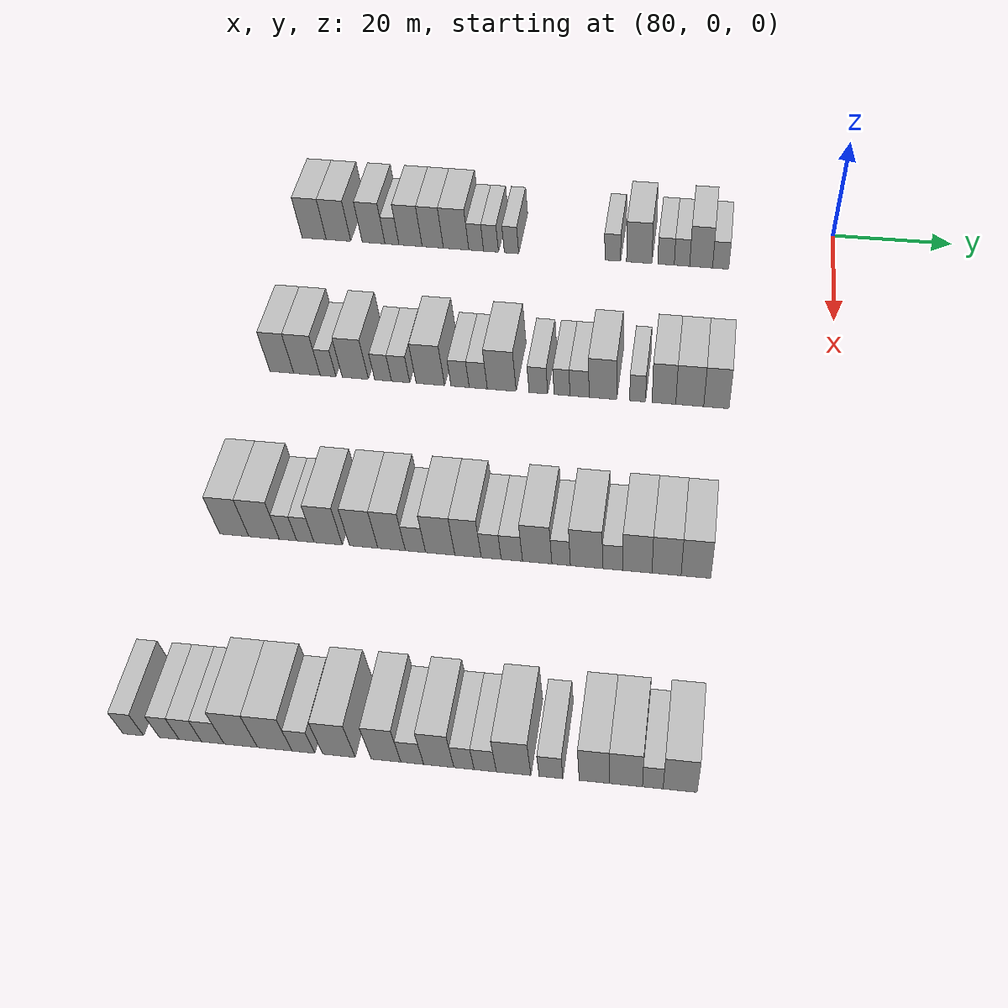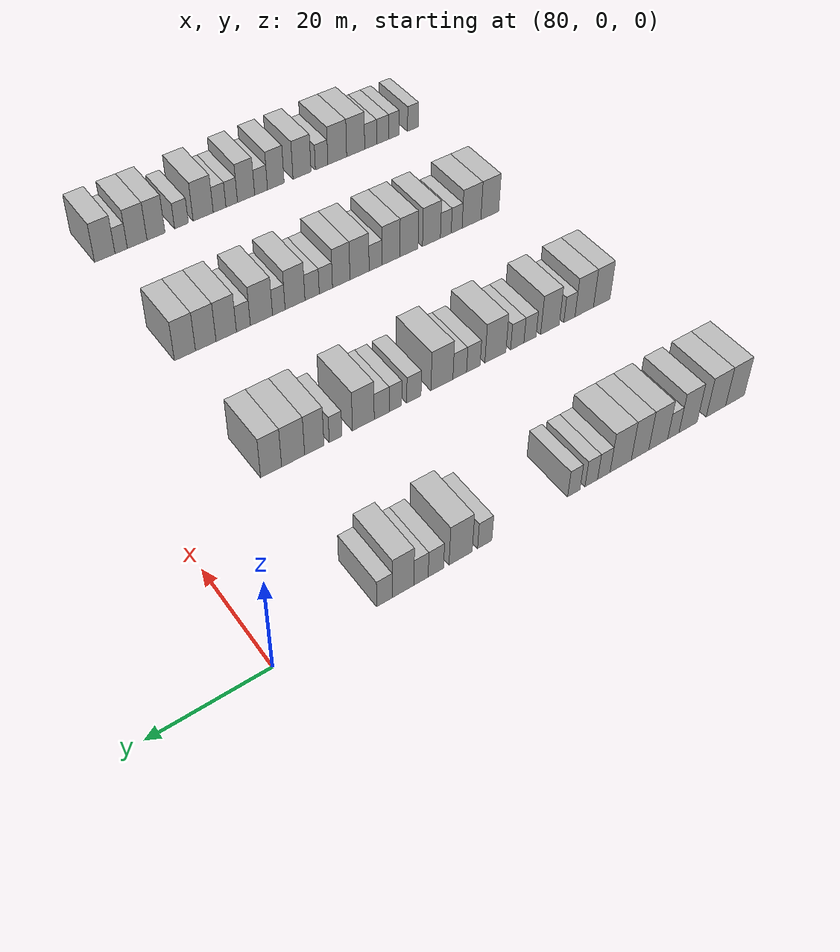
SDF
<sdf version="1.6">
 <world name="default">
  <model name="building_538">
   <static>1</static>
   <pose>85.0000 -88.3654 0 0.000000 0.000000 0.000000</pose>
   <link name="link">
    <pose>0 0 4.50 0 0 0</pose>
    <collision name="collision"><geometry><box><size>10.0000 4.2038 9.0000</size></box></geometry></collision>
    <visual name="visual">
     <cast_shadows>0</cast_shadows>
     <geometry><box><size>10.0000 4.2038 9.0000</size></box></geometry>
     <material>
      <script>
       <uri>model://HANNAS_wall/materials/scripts</uri>
       <uri>model://HANNAS_wall/materials/textures</uri>
       <name>vrc/HANNAS_wall</name>
      </script>
     </material>
    </visual>
   </link>
  </model>
  <model name="building_539">
   <static>1</static>
   <pose>85.0000 -84.1213 0 0.000000 0.000000 0.000000</pose>
   <link name="link">
    <pose>0 0 4.50 0 0 0</pose>
    <collision name="collision"><geometry><box><size>10.0000 4.2843 9.0000</size></box></geometry></collision>
    <visual name="visual">
     <cast_shadows>0</cast_shadows>
     <geometry><box><size>10.0000 4.2843 9.0000</size></box></geometry>
     <material>
      <script>
       <uri>model://HANNAS_wall/materials/scripts</uri>
       <uri>model://HANNAS_wall/materials/textures</uri>
       <name>vrc/HANNAS_wall</name>
      </script>
     </material>
    </visual>
   </link>
  </model>
  <model name="building_540">
   <static>1</static>
   <pose>85.0000 -78.0076 0 0.000000 0.000000 0.000000</pose>
   <link name="link">
    <pose>0 0 4.50 0 0 0</pose>
    <collision name="collision"><geometry><box><size>10.0000 3.9432 9.0000</size></box></geometry></collision>
    <visual name="visual">
     <cast_shadows>0</cast_shadows>
     <geometry><box><size>10.0000 3.9432 9.0000</size></box></geometry>
     <material>
      <script>
       <uri>model://HANNAS_wall/materials/scripts</uri>
       <uri>model://HANNAS_wall/materials/textures</uri>
       <name>vrc/HANNAS_wall</name>
      </script>
     </material>
    </visual>
   </link>
  </model>
  <model name="building_541">
   <static>1</static>
   <pose>85.0000 -74.8191 0 0.000000 0.000000 0.000000</pose>
   <link name="link">
    <pose>0 0 3.00 0 0 0</pose>
    <collision name="collision"><geometry><box><size>10.0000 2.4337 6.0000</size></box></geometry></collision>
    <visual name="visual">
     <cast_shadows>0</cast_shadows>
     <geometry><box><size>10.0000 2.4337 6.0000</size></box></geometry>
     <material>
      <script>
       <uri>model://HANNAS_wall/materials/scripts</uri>
       <uri>model://HANNAS_wall/materials/textures</uri>
       <name>vrc/HANNAS_wall</name>
      </script>
     </material>
    </visual>
   </link>
  </model>
  <model name="building_542">
   <static>1</static>
   <pose>85.0000 -71.5946 0 0.000000 0.000000 0.000000</pose>
   <link name="link">
    <pose>0 0 4.50 0 0 0</pose>
    <collision name="collision"><geometry><box><size>10.0000 4.0153 9.0000</size></box></geometry></collision>
    <visual name="visual">
     <cast_shadows>0</cast_shadows>
     <geometry><box><size>10.0000 4.0153 9.0000</size></box></geometry>
     <material>
      <script>
       <uri>model://HANNAS_wall/materials/scripts</uri>
       <uri>model://HANNAS_wall/materials/textures</uri>
       <name>vrc/HANNAS_wall</name>
      </script>
     </material>
    </visual>
   </link>
  </model>
  <model name="building_543">
   <static>1</static>
   <pose>85.0000 -67.7592 0 0.000000 0.000000 0.000000</pose>
   <link name="link">
    <pose>0 0 4.50 0 0 0</pose>
    <collision name="collision"><geometry><box><size>10.0000 3.6556 9.0000</size></box></geometry></collision>
    <visual name="visual">
     <cast_shadows>0</cast_shadows>
     <geometry><box><size>10.0000 3.6556 9.0000</size></box></geometry>
     <material>
      <script>
       <uri>model://HANNAS_wall/materials/scripts</uri>
       <uri>model://HANNAS_wall/materials/textures</uri>
       <name>vrc/HANNAS_wall</name>
      </script>
     </material>
    </visual>
   </link>
  </model>
  <model name="building_544">
   <static>1</static>
   <pose>85.0000 -63.7354 0 0.000000 0.000000 0.000000</pose>
   <link name="link">
    <pose>0 0 4.50 0 0 0</pose>
    <collision name="collision"><geometry><box><size>10.0000 4.3919 9.0000</size></box></geometry></collision>
    <visual name="visual">
     <cast_shadows>0</cast_shadows>
     <geometry><box><size>10.0000 4.3919 9.0000</size></box></geometry>
     <material>
      <script>
       <uri>model://HANNAS_wall/materials/scripts</uri>
       <uri>model://HANNAS_wall/materials/textures</uri>
       <name>vrc/HANNAS_wall</name>
      </script>
     </material>
    </visual>
   </link>
  </model>
  <model name="building_545">
   <static>1</static>
   <pose>85.0000 -60.2716 0 0.000000 0.000000 0.000000</pose>
   <link name="link">
    <pose>0 0 3.00 0 0 0</pose>
    <collision name="collision"><geometry><box><size>10.0000 2.5357 6.0000</size></box></geometry></collision>
    <visual name="visual">
     <cast_shadows>0</cast_shadows>
     <geometry><box><size>10.0000 2.5357 6.0000</size></box></geometry>
     <material>
      <script>
       <uri>model://HANNAS_wall/materials/scripts</uri>
       <uri>model://HANNAS_wall/materials/textures</uri>
       <name>vrc/HANNAS_wall</name>
      </script>
     </material>
    </visual>
   </link>
  </model>
  <model name="building_546">
   <static>1</static>
   <pose>85.0000 -57.7233 0 0.000000 0.000000 0.000000</pose>
   <link name="link">
    <pose>0 0 3.00 0 0 0</pose>
    <collision name="collision"><geometry><box><size>10.0000 2.5609 6.0000</size></box></geometry></collision>
    <visual name="visual">
     <cast_shadows>0</cast_shadows>
     <geometry><box><size>10.0000 2.5609 6.0000</size></box></geometry>
     <material>
      <script>
       <uri>model://HANNAS_wall/materials/scripts</uri>
       <uri>model://HANNAS_wall/materials/textures</uri>
       <name>vrc/HANNAS_wall</name>
      </script>
     </material>
    </visual>
   </link>
  </model>
  <model name="building_547">
   <static>1</static>
   <pose>85.0000 -54.2110 0 0.000000 0.000000 0.000000</pose>
   <link name="link">
    <pose>0 0 3.00 0 0 0</pose>
    <collision name="collision"><geometry><box><size>10.0000 2.4637 6.0000</size></box></geometry></collision>
    <visual name="visual">
     <cast_shadows>0</cast_shadows>
     <geometry><box><size>10.0000 2.4637 6.0000</size></box></geometry>
     <material>
      <script>
       <uri>model://HANNAS_wall/materials/scripts</uri>
       <uri>model://HANNAS_wall/materials/textures</uri>
       <name>vrc/HANNAS_wall</name>
      </script>
     </material>
    </visual>
   </link>
  </model>
  <model name="building_548">
   <static>1</static>
   <pose>85.0000 -36.9810 0 0.000000 0.000000 0.000000</pose>
   <link name="link">
    <pose>0 0 3.00 0 0 0</pose>
    <collision name="collision"><geometry><box><size>10.0000 2.6655 6.0000</size></box></geometry></collision>
    <visual name="visual">
     <cast_shadows>0</cast_shadows>
     <geometry><box><size>10.0000 2.6655 6.0000</size></box></geometry>
     <material>
      <script>
       <uri>model://HANNAS_wall/materials/scripts</uri>
       <uri>model://HANNAS_wall/materials/textures</uri>
       <name>vrc/HANNAS_wall</name>
      </script>
     </material>
    </visual>
   </link>
  </model>
  <model name="building_549">
   <static>1</static>
   <pose>85.0000 -32.5104 0 0.000000 0.000000 0.000000</pose>
   <link name="link">
    <pose>0 0 4.50 0 0 0</pose>
    <collision name="collision"><geometry><box><size>10.0000 4.2758 9.0000</size></box></geometry></collision>
    <visual name="visual">
     <cast_shadows>0</cast_shadows>
     <geometry><box><size>10.0000 4.2758 9.0000</size></box></geometry>
     <material>
      <script>
       <uri>model://HANNAS_wall/materials/scripts</uri>
       <uri>model://HANNAS_wall/materials/textures</uri>
       <name>vrc/HANNAS_wall</name>
      </script>
     </material>
    </visual>
   </link>
  </model>
  <model name="building_550">
   <static>1</static>
   <pose>85.0000 -27.9882 0 0.000000 0.000000 0.000000</pose>
   <link name="link">
    <pose>0 0 3.00 0 0 0</pose>
    <collision name="collision"><geometry><box><size>10.0000 2.7686 6.0000</size></box></geometry></collision>
    <visual name="visual">
     <cast_shadows>0</cast_shadows>
     <geometry><box><size>10.0000 2.7686 6.0000</size></box></geometry>
     <material>
      <script>
       <uri>model://HANNAS_wall/materials/scripts</uri>
       <uri>model://HANNAS_wall/materials/textures</uri>
       <name>vrc/HANNAS_wall</name>
      </script>
     </material>
    </visual>
   </link>
  </model>
  <model name="building_551">
   <static>1</static>
   <pose>85.0000 -25.3144 0 0.000000 0.000000 0.000000</pose>
   <link name="link">
    <pose>0 0 3.00 0 0 0</pose>
    <collision name="collision"><geometry><box><size>10.0000 2.5789 6.0000</size></box></geometry></collision>
    <visual name="visual">
     <cast_shadows>0</cast_shadows>
     <geometry><box><size>10.0000 2.5789 6.0000</size></box></geometry>
     <material>
      <script>
       <uri>model://HANNAS_wall/materials/scripts</uri>
       <uri>model://HANNAS_wall/materials/textures</uri>
       <name>vrc/HANNAS_wall</name>
      </script>
     </material>
    </visual>
   </link>
  </model>
  <model name="building_552">
   <static>1</static>
   <pose>85.0000 -22.1097 0 0.000000 0.000000 0.000000</pose>
   <link name="link">
    <pose>0 0 4.50 0 0 0</pose>
    <collision name="collision"><geometry><box><size>10.0000 3.8306 9.0000</size></box></geometry></collision>
    <visual name="visual">
     <cast_shadows>0</cast_shadows>
     <geometry><box><size>10.0000 3.8306 9.0000</size></box></geometry>
     <material>
      <script>
       <uri>model://HANNAS_wall/materials/scripts</uri>
       <uri>model://HANNAS_wall/materials/textures</uri>
       <name>vrc/HANNAS_wall</name>
      </script>
     </material>
    </visual>
   </link>
  </model>
  <model name="building_553">
   <static>1</static>
   <pose>85.0000 -18.8378 0 0.000000 0.000000 0.000000</pose>
   <link name="link">
    <pose>0 0 3.00 0 0 0</pose>
    <collision name="collision"><geometry><box><size>10.0000 2.7131 6.0000</size></box></geometry></collision>
    <visual name="visual">
     <cast_shadows>0</cast_shadows>
     <geometry><box><size>10.0000 2.7131 6.0000</size></box></geometry>
     <material>
      <script>
       <uri>model://HANNAS_wall/materials/scripts</uri>
       <uri>model://HANNAS_wall/materials/textures</uri>
       <name>vrc/HANNAS_wall</name>
      </script>
     </material>
    </visual>
   </link>
  </model>
  <model name="building_769">
   <static>1</static>
   <pose>115.0000 -85.5222 0 0.000000 0.000000 0.000000</pose>
   <link name="link">
    <pose>0 0 4.50 0 0 0</pose>
    <collision name="collision"><geometry><box><size>10.0000 3.7910 9.0000</size></box></geometry></collision>
    <visual name="visual">
     <cast_shadows>0</cast_shadows>
     <geometry><box><size>10.0000 3.7910 9.0000</size></box></geometry>
     <material>
      <script>
       <uri>model://HANNAS_wall/materials/scripts</uri>
       <uri>model://HANNAS_wall/materials/textures</uri>
       <name>vrc/HANNAS_wall</name>
      </script>
     </material>
    </visual>
   </link>
  </model>
  <model name="building_770">
   <static>1</static>
   <pose>115.0000 -81.5356 0 0.000000 0.000000 0.000000</pose>
   <link name="link">
    <pose>0 0 4.50 0 0 0</pose>
    <collision name="collision"><geometry><box><size>10.0000 4.1824 9.0000</size></box></geometry></collision>
    <visual name="visual">
     <cast_shadows>0</cast_shadows>
     <geometry><box><size>10.0000 4.1824 9.0000</size></box></geometry>
     <material>
      <script>
       <uri>model://HANNAS_wall/materials/scripts</uri>
       <uri>model://HANNAS_wall/materials/textures</uri>
       <name>vrc/HANNAS_wall</name>
      </script>
     </material>
    </visual>
   </link>
  </model>
  <model name="building_771">
   <static>1</static>
   <pose>115.0000 -78.1927 0 0.000000 0.000000 0.000000</pose>
   <link name="link">
    <pose>0 0 3.00 0 0 0</pose>
    <collision name="collision"><geometry><box><size>10.0000 2.5033 6.0000</size></box></geometry></collision>
    <visual name="visual">
     <cast_shadows>0</cast_shadows>
     <geometry><box><size>10.0000 2.5033 6.0000</size></box></geometry>
     <material>
      <script>
       <uri>model://HANNAS_wall/materials/scripts</uri>
       <uri>model://HANNAS_wall/materials/textures</uri>
       <name>vrc/HANNAS_wall</name>
      </script>
     </material>
    </visual>
   </link>
  </model>
  <model name="building_772">
   <static>1</static>
   <pose>115.0000 -73.8792 0 0.000000 0.000000 0.000000</pose>
   <link name="link">
    <pose>0 0 4.50 0 0 0</pose>
    <collision name="collision"><geometry><box><size>10.0000 4.1237 9.0000</size></box></geometry></collision>
    <visual name="visual">
     <cast_shadows>0</cast_shadows>
     <geometry><box><size>10.0000 4.1237 9.0000</size></box></geometry>
     <material>
      <script>
       <uri>model://HANNAS_wall/materials/scripts</uri>
       <uri>model://HANNAS_wall/materials/textures</uri>
       <name>vrc/HANNAS_wall</name>
      </script>
     </material>
    </visual>
   </link>
  </model>
  <model name="building_773">
   <static>1</static>
   <pose>115.0000 -69.4951 0 0.000000 0.000000 0.000000</pose>
   <link name="link">
    <pose>0 0 3.00 0 0 0</pose>
    <collision name="collision"><geometry><box><size>10.0000 2.6445 6.0000</size></box></geometry></collision>
    <visual name="visual">
     <cast_shadows>0</cast_shadows>
     <geometry><box><size>10.0000 2.6445 6.0000</size></box></geometry>
     <material>
      <script>
       <uri>model://HANNAS_wall/materials/scripts</uri>
       <uri>model://HANNAS_wall/materials/textures</uri>
       <name>vrc/HANNAS_wall</name>
      </script>
     </material>
    </visual>
   </link>
  </model>
  <model name="building_774">
   <static>1</static>
   <pose>115.0000 -66.7379 0 0.000000 0.000000 0.000000</pose>
   <link name="link">
    <pose>0 0 3.00 0 0 0</pose>
    <collision name="collision"><geometry><box><size>10.0000 2.8700 6.0000</size></box></geometry></collision>
    <visual name="visual">
     <cast_shadows>0</cast_shadows>
     <geometry><box><size>10.0000 2.8700 6.0000</size></box></geometry>
     <material>
      <script>
       <uri>model://HANNAS_wall/materials/scripts</uri>
       <uri>model://HANNAS_wall/materials/textures</uri>
       <name>vrc/HANNAS_wall</name>
      </script>
     </material>
    </visual>
   </link>
  </model>
  <model name="building_775">
   <static>1</static>
   <pose>115.0000 -62.0714 0 0.000000 0.000000 0.000000</pose>
   <link name="link">
    <pose>0 0 4.50 0 0 0</pose>
    <collision name="collision"><geometry><box><size>10.0000 4.4628 9.0000</size></box></geometry></collision>
    <visual name="visual">
     <cast_shadows>0</cast_shadows>
     <geometry><box><size>10.0000 4.4628 9.0000</size></box></geometry>
     <material>
      <script>
       <uri>model://HANNAS_wall/materials/scripts</uri>
       <uri>model://HANNAS_wall/materials/textures</uri>
       <name>vrc/HANNAS_wall</name>
      </script>
     </material>
    </visual>
   </link>
  </model>
  <model name="building_776">
   <static>1</static>
   <pose>115.0000 -57.4232 0 0.000000 0.000000 0.000000</pose>
   <link name="link">
    <pose>0 0 3.00 0 0 0</pose>
    <collision name="collision"><geometry><box><size>10.0000 2.8337 6.0000</size></box></geometry></collision>
    <visual name="visual">
     <cast_shadows>0</cast_shadows>
     <geometry><box><size>10.0000 2.8337 6.0000</size></box></geometry>
     <material>
      <script>
       <uri>model://HANNAS_wall/materials/scripts</uri>
       <uri>model://HANNAS_wall/materials/textures</uri>
       <name>vrc/HANNAS_wall</name>
      </script>
     </material>
    </visual>
   </link>
  </model>
  <model name="building_777">
   <static>1</static>
   <pose>115.0000 -54.5972 0 0.000000 0.000000 0.000000</pose>
   <link name="link">
    <pose>0 0 3.00 0 0 0</pose>
    <collision name="collision"><geometry><box><size>10.0000 2.8182 6.0000</size></box></geometry></collision>
    <visual name="visual">
     <cast_shadows>0</cast_shadows>
     <geometry><box><size>10.0000 2.8182 6.0000</size></box></geometry>
     <material>
      <script>
       <uri>model://HANNAS_wall/materials/scripts</uri>
       <uri>model://HANNAS_wall/materials/textures</uri>
       <name>vrc/HANNAS_wall</name>
      </script>
     </material>
    </visual>
   </link>
  </model>
  <model name="building_778">
   <static>1</static>
   <pose>115.0000 -50.9412 0 0.000000 0.000000 0.000000</pose>
   <link name="link">
    <pose>0 0 4.50 0 0 0</pose>
    <collision name="collision"><geometry><box><size>10.0000 4.4937 9.0000</size></box></geometry></collision>
    <visual name="visual">
     <cast_shadows>0</cast_shadows>
     <geometry><box><size>10.0000 4.4937 9.0000</size></box></geometry>
     <material>
      <script>
       <uri>model://HANNAS_wall/materials/scripts</uri>
       <uri>model://HANNAS_wall/materials/textures</uri>
       <name>vrc/HANNAS_wall</name>
      </script>
     </material>
    </visual>
   </link>
  </model>
  <model name="building_779">
   <static>1</static>
   <pose>115.0000 -45.2568 0 0.000000 0.000000 0.000000</pose>
   <link name="link">
    <pose>0 0 3.00 0 0 0</pose>
    <collision name="collision"><geometry><box><size>10.0000 2.8752 6.0000</size></box></geometry></collision>
    <visual name="visual">
     <cast_shadows>0</cast_shadows>
     <geometry><box><size>10.0000 2.8752 6.0000</size></box></geometry>
     <material>
      <script>
       <uri>model://HANNAS_wall/materials/scripts</uri>
       <uri>model://HANNAS_wall/materials/textures</uri>
       <name>vrc/HANNAS_wall</name>
      </script>
     </material>
    </visual>
   </link>
  </model>
  <model name="building_780">
   <static>1</static>
   <pose>115.0000 -41.5961 0 0.000000 0.000000 0.000000</pose>
   <link name="link">
    <pose>0 0 3.00 0 0 0</pose>
    <collision name="collision"><geometry><box><size>10.0000 2.4462 6.0000</size></box></geometry></collision>
    <visual name="visual">
     <cast_shadows>0</cast_shadows>
     <geometry><box><size>10.0000 2.4462 6.0000</size></box></geometry>
     <material>
      <script>
       <uri>model://HANNAS_wall/materials/scripts</uri>
       <uri>model://HANNAS_wall/materials/textures</uri>
       <name>vrc/HANNAS_wall</name>
      </script>
     </material>
    </visual>
   </link>
  </model>
  <model name="building_781">
   <static>1</static>
   <pose>115.0000 -38.8940 0 0.000000 0.000000 0.000000</pose>
   <link name="link">
    <pose>0 0 3.00 0 0 0</pose>
    <collision name="collision"><geometry><box><size>10.0000 2.9580 6.0000</size></box></geometry></collision>
    <visual name="visual">
     <cast_shadows>0</cast_shadows>
     <geometry><box><size>10.0000 2.9580 6.0000</size></box></geometry>
     <material>
      <script>
       <uri>model://HANNAS_wall/materials/scripts</uri>
       <uri>model://HANNAS_wall/materials/textures</uri>
       <name>vrc/HANNAS_wall</name>
      </script>
     </material>
    </visual>
   </link>
  </model>
  <model name="building_782">
   <static>1</static>
   <pose>115.0000 -35.3016 0 0.000000 0.000000 0.000000</pose>
   <link name="link">
    <pose>0 0 4.50 0 0 0</pose>
    <collision name="collision"><geometry><box><size>10.0000 4.2269 9.0000</size></box></geometry></collision>
    <visual name="visual">
     <cast_shadows>0</cast_shadows>
     <geometry><box><size>10.0000 4.2269 9.0000</size></box></geometry>
     <material>
      <script>
       <uri>model://HANNAS_wall/materials/scripts</uri>
       <uri>model://HANNAS_wall/materials/textures</uri>
       <name>vrc/HANNAS_wall</name>
      </script>
     </material>
    </visual>
   </link>
  </model>
  <model name="building_783">
   <static>1</static>
   <pose>115.0000 -29.9799 0 0.000000 0.000000 0.000000</pose>
   <link name="link">
    <pose>0 0 3.00 0 0 0</pose>
    <collision name="collision"><geometry><box><size>10.0000 2.4165 6.0000</size></box></geometry></collision>
    <visual name="visual">
     <cast_shadows>0</cast_shadows>
     <geometry><box><size>10.0000 2.4165 6.0000</size></box></geometry>
     <material>
      <script>
       <uri>model://HANNAS_wall/materials/scripts</uri>
       <uri>model://HANNAS_wall/materials/textures</uri>
       <name>vrc/HANNAS_wall</name>
      </script>
     </material>
    </visual>
   </link>
  </model>
  <model name="building_784">
   <static>1</static>
   <pose>115.0000 -25.9625 0 0.000000 0.000000 0.000000</pose>
   <link name="link">
    <pose>0 0 4.50 0 0 0</pose>
    <collision name="collision"><geometry><box><size>10.0000 3.6182 9.0000</size></box></geometry></collision>
    <visual name="visual">
     <cast_shadows>0</cast_shadows>
     <geometry><box><size>10.0000 3.6182 9.0000</size></box></geometry>
     <material>
      <script>
       <uri>model://HANNAS_wall/materials/scripts</uri>
       <uri>model://HANNAS_wall/materials/textures</uri>
       <name>vrc/HANNAS_wall</name>
      </script>
     </material>
    </visual>
   </link>
  </model>
  <model name="building_785">
   <static>1</static>
   <pose>115.0000 -22.0261 0 0.000000 0.000000 0.000000</pose>
   <link name="link">
    <pose>0 0 4.50 0 0 0</pose>
    <collision name="collision"><geometry><box><size>10.0000 4.2546 9.0000</size></box></geometry></collision>
    <visual name="visual">
     <cast_shadows>0</cast_shadows>
     <geometry><box><size>10.0000 4.2546 9.0000</size></box></geometry>
     <material>
      <script>
       <uri>model://HANNAS_wall/materials/scripts</uri>
       <uri>model://HANNAS_wall/materials/textures</uri>
       <name>vrc/HANNAS_wall</name>
      </script>
     </material>
    </visual>
   </link>
  </model>
  <model name="building_786">
   <static>1</static>
   <pose>115.0000 -17.9835 0 0.000000 0.000000 0.000000</pose>
   <link name="link">
    <pose>0 0 4.50 0 0 0</pose>
    <collision name="collision"><geometry><box><size>10.0000 3.8308 9.0000</size></box></geometry></collision>
    <visual name="visual">
     <cast_shadows>0</cast_shadows>
     <geometry><box><size>10.0000 3.8308 9.0000</size></box></geometry>
     <material>
      <script>
       <uri>model://HANNAS_wall/materials/scripts</uri>
       <uri>model://HANNAS_wall/materials/textures</uri>
       <name>vrc/HANNAS_wall</name>
      </script>
     </material>
    </visual>
   </link>
  </model>
  <model name="building_1001">
   <static>1</static>
   <pose>145.0000 -83.8405 0 0.000000 0.000000 0.000000</pose>
   <link name="link">
    <pose>0 0 4.50 0 0 0</pose>
    <collision name="collision"><geometry><box><size>10.0000 4.1711 9.0000</size></box></geometry></collision>
    <visual name="visual">
     <cast_shadows>0</cast_shadows>
     <geometry><box><size>10.0000 4.1711 9.0000</size></box></geometry>
     <material>
      <script>
       <uri>model://HANNAS_wall/materials/scripts</uri>
       <uri>model://HANNAS_wall/materials/textures</uri>
       <name>vrc/HANNAS_wall</name>
      </script>
     </material>
    </visual>
   </link>
  </model>
  <model name="building_1002">
   <static>1</static>
   <pose>145.0000 -79.5760 0 0.000000 0.000000 0.000000</pose>
   <link name="link">
    <pose>0 0 4.50 0 0 0</pose>
    <collision name="collision"><geometry><box><size>10.0000 4.3579 9.0000</size></box></geometry></collision>
    <visual name="visual">
     <cast_shadows>0</cast_shadows>
     <geometry><box><size>10.0000 4.3579 9.0000</size></box></geometry>
     <material>
      <script>
       <uri>model://HANNAS_wall/materials/scripts</uri>
       <uri>model://HANNAS_wall/materials/textures</uri>
       <name>vrc/HANNAS_wall</name>
      </script>
     </material>
    </visual>
   </link>
  </model>
  <model name="building_1003">
   <static>1</static>
   <pose>145.0000 -76.1484 0 0.000000 0.000000 0.000000</pose>
   <link name="link">
    <pose>0 0 3.00 0 0 0</pose>
    <collision name="collision"><geometry><box><size>10.0000 2.4973 6.0000</size></box></geometry></collision>
    <visual name="visual">
     <cast_shadows>0</cast_shadows>
     <geometry><box><size>10.0000 2.4973 6.0000</size></box></geometry>
     <material>
      <script>
       <uri>model://HANNAS_wall/materials/scripts</uri>
       <uri>model://HANNAS_wall/materials/textures</uri>
       <name>vrc/HANNAS_wall</name>
      </script>
     </material>
    </visual>
   </link>
  </model>
  <model name="building_1004">
   <static>1</static>
   <pose>145.0000 -73.6662 0 0.000000 0.000000 0.000000</pose>
   <link name="link">
    <pose>0 0 3.00 0 0 0</pose>
    <collision name="collision"><geometry><box><size>10.0000 2.4671 6.0000</size></box></geometry></collision>
    <visual name="visual">
     <cast_shadows>0</cast_shadows>
     <geometry><box><size>10.0000 2.4671 6.0000</size></box></geometry>
     <material>
      <script>
       <uri>model://HANNAS_wall/materials/scripts</uri>
       <uri>model://HANNAS_wall/materials/textures</uri>
       <name>vrc/HANNAS_wall</name>
      </script>
     </material>
    </visual>
   </link>
  </model>
  <model name="building_1005">
   <static>1</static>
   <pose>145.0000 -70.4156 0 0.000000 0.000000 0.000000</pose>
   <link name="link">
    <pose>0 0 4.50 0 0 0</pose>
    <collision name="collision"><geometry><box><size>10.0000 4.0340 9.0000</size></box></geometry></collision>
    <visual name="visual">
     <cast_shadows>0</cast_shadows>
     <geometry><box><size>10.0000 4.0340 9.0000</size></box></geometry>
     <material>
      <script>
       <uri>model://HANNAS_wall/materials/scripts</uri>
       <uri>model://HANNAS_wall/materials/textures</uri>
       <name>vrc/HANNAS_wall</name>
      </script>
     </material>
    </visual>
   </link>
  </model>
  <model name="building_1006">
   <static>1</static>
   <pose>145.0000 -65.3931 0 0.000000 0.000000 0.000000</pose>
   <link name="link">
    <pose>0 0 4.50 0 0 0</pose>
    <collision name="collision"><geometry><box><size>10.0000 4.0109 9.0000</size></box></geometry></collision>
    <visual name="visual">
     <cast_shadows>0</cast_shadows>
     <geometry><box><size>10.0000 4.0109 9.0000</size></box></geometry>
     <material>
      <script>
       <uri>model://HANNAS_wall/materials/scripts</uri>
       <uri>model://HANNAS_wall/materials/textures</uri>
       <name>vrc/HANNAS_wall</name>
      </script>
     </material>
    </visual>
   </link>
  </model>
  <model name="building_1007">
   <static>1</static>
   <pose>145.0000 -61.4469 0 0.000000 0.000000 0.000000</pose>
   <link name="link">
    <pose>0 0 4.50 0 0 0</pose>
    <collision name="collision"><geometry><box><size>10.0000 3.8816 9.0000</size></box></geometry></collision>
    <visual name="visual">
     <cast_shadows>0</cast_shadows>
     <geometry><box><size>10.0000 3.8816 9.0000</size></box></geometry>
     <material>
      <script>
       <uri>model://HANNAS_wall/materials/scripts</uri>
       <uri>model://HANNAS_wall/materials/textures</uri>
       <name>vrc/HANNAS_wall</name>
      </script>
     </material>
    </visual>
   </link>
  </model>
  <model name="building_1008">
   <static>1</static>
   <pose>145.0000 -58.0804 0 0.000000 0.000000 0.000000</pose>
   <link name="link">
    <pose>0 0 3.00 0 0 0</pose>
    <collision name="collision"><geometry><box><size>10.0000 2.8513 6.0000</size></box></geometry></collision>
    <visual name="visual">
     <cast_shadows>0</cast_shadows>
     <geometry><box><size>10.0000 2.8513 6.0000</size></box></geometry>
     <material>
      <script>
       <uri>model://HANNAS_wall/materials/scripts</uri>
       <uri>model://HANNAS_wall/materials/textures</uri>
       <name>vrc/HANNAS_wall</name>
      </script>
     </material>
    </visual>
   </link>
  </model>
  <model name="building_1009">
   <static>1</static>
   <pose>145.0000 -54.5990 0 0.000000 0.000000 0.000000</pose>
   <link name="link">
    <pose>0 0 4.50 0 0 0</pose>
    <collision name="collision"><geometry><box><size>10.0000 4.1114 9.0000</size></box></geometry></collision>
    <visual name="visual">
     <cast_shadows>0</cast_shadows>
     <geometry><box><size>10.0000 4.1114 9.0000</size></box></geometry>
     <material>
      <script>
       <uri>model://HANNAS_wall/materials/scripts</uri>
       <uri>model://HANNAS_wall/materials/textures</uri>
       <name>vrc/HANNAS_wall</name>
      </script>
     </material>
    </visual>
   </link>
  </model>
  <model name="building_1010">
   <static>1</static>
   <pose>145.0000 -50.6967 0 0.000000 0.000000 0.000000</pose>
   <link name="link">
    <pose>0 0 4.50 0 0 0</pose>
    <collision name="collision"><geometry><box><size>10.0000 3.6932 9.0000</size></box></geometry></collision>
    <visual name="visual">
     <cast_shadows>0</cast_shadows>
     <geometry><box><size>10.0000 3.6932 9.0000</size></box></geometry>
     <material>
      <script>
       <uri>model://HANNAS_wall/materials/scripts</uri>
       <uri>model://HANNAS_wall/materials/textures</uri>
       <name>vrc/HANNAS_wall</name>
      </script>
     </material>
    </visual>
   </link>
  </model>
  <model name="building_1011">
   <static>1</static>
   <pose>145.0000 -47.4583 0 0.000000 0.000000 0.000000</pose>
   <link name="link">
    <pose>0 0 3.00 0 0 0</pose>
    <collision name="collision"><geometry><box><size>10.0000 2.7837 6.0000</size></box></geometry></collision>
    <visual name="visual">
     <cast_shadows>0</cast_shadows>
     <geometry><box><size>10.0000 2.7837 6.0000</size></box></geometry>
     <material>
      <script>
       <uri>model://HANNAS_wall/materials/scripts</uri>
       <uri>model://HANNAS_wall/materials/textures</uri>
       <name>vrc/HANNAS_wall</name>
      </script>
     </material>
    </visual>
   </link>
  </model>
  <model name="building_1012">
   <static>1</static>
   <pose>145.0000 -44.5813 0 0.000000 0.000000 0.000000</pose>
   <link name="link">
    <pose>0 0 3.00 0 0 0</pose>
    <collision name="collision"><geometry><box><size>10.0000 2.9703 6.0000</size></box></geometry></collision>
    <visual name="visual">
     <cast_shadows>0</cast_shadows>
     <geometry><box><size>10.0000 2.9703 6.0000</size></box></geometry>
     <material>
      <script>
       <uri>model://HANNAS_wall/materials/scripts</uri>
       <uri>model://HANNAS_wall/materials/textures</uri>
       <name>vrc/HANNAS_wall</name>
      </script>
     </material>
    </visual>
   </link>
  </model>
  <model name="building_1013">
   <static>1</static>
   <pose>145.0000 -41.0569 0 0.000000 0.000000 0.000000</pose>
   <link name="link">
    <pose>0 0 4.50 0 0 0</pose>
    <collision name="collision"><geometry><box><size>10.0000 4.0784 9.0000</size></box></geometry></collision>
    <visual name="visual">
     <cast_shadows>0</cast_shadows>
     <geometry><box><size>10.0000 4.0784 9.0000</size></box></geometry>
     <material>
      <script>
       <uri>model://HANNAS_wall/materials/scripts</uri>
       <uri>model://HANNAS_wall/materials/textures</uri>
       <name>vrc/HANNAS_wall</name>
      </script>
     </material>
    </visual>
   </link>
  </model>
  <model name="building_1014">
   <static>1</static>
   <pose>145.0000 -37.7388 0 0.000000 0.000000 0.000000</pose>
   <link name="link">
    <pose>0 0 3.00 0 0 0</pose>
    <collision name="collision"><geometry><box><size>10.0000 2.5579 6.0000</size></box></geometry></collision>
    <visual name="visual">
     <cast_shadows>0</cast_shadows>
     <geometry><box><size>10.0000 2.5579 6.0000</size></box></geometry>
     <material>
      <script>
       <uri>model://HANNAS_wall/materials/scripts</uri>
       <uri>model://HANNAS_wall/materials/textures</uri>
       <name>vrc/HANNAS_wall</name>
      </script>
     </material>
    </visual>
   </link>
  </model>
  <model name="building_1015">
   <static>1</static>
   <pose>145.0000 -34.2333 0 0.000000 0.000000 0.000000</pose>
   <link name="link">
    <pose>0 0 4.50 0 0 0</pose>
    <collision name="collision"><geometry><box><size>10.0000 4.4531 9.0000</size></box></geometry></collision>
    <visual name="visual">
     <cast_shadows>0</cast_shadows>
     <geometry><box><size>10.0000 4.4531 9.0000</size></box></geometry>
     <material>
      <script>
       <uri>model://HANNAS_wall/materials/scripts</uri>
       <uri>model://HANNAS_wall/materials/textures</uri>
       <name>vrc/HANNAS_wall</name>
      </script>
     </material>
    </visual>
   </link>
  </model>
  <model name="building_1016">
   <static>1</static>
   <pose>145.0000 -30.6207 0 0.000000 0.000000 0.000000</pose>
   <link name="link">
    <pose>0 0 3.00 0 0 0</pose>
    <collision name="collision"><geometry><box><size>10.0000 2.7720 6.0000</size></box></geometry></collision>
    <visual name="visual">
     <cast_shadows>0</cast_shadows>
     <geometry><box><size>10.0000 2.7720 6.0000</size></box></geometry>
     <material>
      <script>
       <uri>model://HANNAS_wall/materials/scripts</uri>
       <uri>model://HANNAS_wall/materials/textures</uri>
       <name>vrc/HANNAS_wall</name>
      </script>
     </material>
    </visual>
   </link>
  </model>
  <model name="building_1017">
   <static>1</static>
   <pose>145.0000 -27.2282 0 0.000000 0.000000 0.000000</pose>
   <link name="link">
    <pose>0 0 4.50 0 0 0</pose>
    <collision name="collision"><geometry><box><size>10.0000 4.0131 9.0000</size></box></geometry></collision>
    <visual name="visual">
     <cast_shadows>0</cast_shadows>
     <geometry><box><size>10.0000 4.0131 9.0000</size></box></geometry>
     <material>
      <script>
       <uri>model://HANNAS_wall/materials/scripts</uri>
       <uri>model://HANNAS_wall/materials/textures</uri>
       <name>vrc/HANNAS_wall</name>
      </script>
     </material>
    </visual>
   </link>
  </model>
  <model name="building_1018">
   <static>1</static>
   <pose>145.0000 -23.2283 0 0.000000 0.000000 0.000000</pose>
   <link name="link">
    <pose>0 0 4.50 0 0 0</pose>
    <collision name="collision"><geometry><box><size>10.0000 3.9866 9.0000</size></box></geometry></collision>
    <visual name="visual">
     <cast_shadows>0</cast_shadows>
     <geometry><box><size>10.0000 3.9866 9.0000</size></box></geometry>
     <material>
      <script>
       <uri>model://HANNAS_wall/materials/scripts</uri>
       <uri>model://HANNAS_wall/materials/textures</uri>
       <name>vrc/HANNAS_wall</name>
      </script>
     </material>
    </visual>
   </link>
  </model>
  <model name="building_1019">
   <static>1</static>
   <pose>145.0000 -19.2121 0 0.000000 0.000000 0.000000</pose>
   <link name="link">
    <pose>0 0 4.50 0 0 0</pose>
    <collision name="collision"><geometry><box><size>10.0000 4.0458 9.0000</size></box></geometry></collision>
    <visual name="visual">
     <cast_shadows>0</cast_shadows>
     <geometry><box><size>10.0000 4.0458 9.0000</size></box></geometry>
     <material>
      <script>
       <uri>model://HANNAS_wall/materials/scripts</uri>
       <uri>model://HANNAS_wall/materials/textures</uri>
       <name>vrc/HANNAS_wall</name>
      </script>
     </material>
    </visual>
   </link>
  </model>
  <model name="building_1226">
   <static>1</static>
   <pose>175.0000 -87.4589 0 0.000000 0.000000 0.000000</pose>
   <link name="link">
    <pose>0 0 3.00 0 0 0</pose>
    <collision name="collision"><geometry><box><size>10.0000 2.6388 6.0000</size></box></geometry></collision>
    <visual name="visual">
     <cast_shadows>0</cast_shadows>
     <geometry><box><size>10.0000 2.6388 6.0000</size></box></geometry>
     <material>
      <script>
       <uri>model://HANNAS_wall/materials/scripts</uri>
       <uri>model://HANNAS_wall/materials/textures</uri>
       <name>vrc/HANNAS_wall</name>
      </script>
     </material>
    </visual>
   </link>
  </model>
  <model name="building_1227">
   <static>1</static>
   <pose>175.0000 -82.8702 0 0.000000 0.000000 0.000000</pose>
   <link name="link">
    <pose>0 0 3.00 0 0 0</pose>
    <collision name="collision"><geometry><box><size>10.0000 2.5384 6.0000</size></box></geometry></collision>
    <visual name="visual">
     <cast_shadows>0</cast_shadows>
     <geometry><box><size>10.0000 2.5384 6.0000</size></box></geometry>
     <material>
      <script>
       <uri>model://HANNAS_wall/materials/scripts</uri>
       <uri>model://HANNAS_wall/materials/textures</uri>
       <name>vrc/HANNAS_wall</name>
      </script>
     </material>
    </visual>
   </link>
  </model>
  <model name="building_1228">
   <static>1</static>
   <pose>175.0000 -80.1651 0 0.000000 0.000000 0.000000</pose>
   <link name="link">
    <pose>0 0 3.00 0 0 0</pose>
    <collision name="collision"><geometry><box><size>10.0000 2.8719 6.0000</size></box></geometry></collision>
    <visual name="visual">
     <cast_shadows>0</cast_shadows>
     <geometry><box><size>10.0000 2.8719 6.0000</size></box></geometry>
     <material>
      <script>
       <uri>model://HANNAS_wall/materials/scripts</uri>
       <uri>model://HANNAS_wall/materials/textures</uri>
       <name>vrc/HANNAS_wall</name>
      </script>
     </material>
    </visual>
   </link>
  </model>
  <model name="building_1229">
   <static>1</static>
   <pose>175.0000 -77.2823 0 0.000000 0.000000 0.000000</pose>
   <link name="link">
    <pose>0 0 3.00 0 0 0</pose>
    <collision name="collision"><geometry><box><size>10.0000 2.8936 6.0000</size></box></geometry></collision>
    <visual name="visual">
     <cast_shadows>0</cast_shadows>
     <geometry><box><size>10.0000 2.8936 6.0000</size></box></geometry>
     <material>
      <script>
       <uri>model://HANNAS_wall/materials/scripts</uri>
       <uri>model://HANNAS_wall/materials/textures</uri>
       <name>vrc/HANNAS_wall</name>
      </script>
     </material>
    </visual>
   </link>
  </model>
  <model name="building_1230">
   <static>1</static>
   <pose>175.0000 -73.7181 0 0.000000 0.000000 0.000000</pose>
   <link name="link">
    <pose>0 0 4.50 0 0 0</pose>
    <collision name="collision"><geometry><box><size>10.0000 4.2348 9.0000</size></box></geometry></collision>
    <visual name="visual">
     <cast_shadows>0</cast_shadows>
     <geometry><box><size>10.0000 4.2348 9.0000</size></box></geometry>
     <material>
      <script>
       <uri>model://HANNAS_wall/materials/scripts</uri>
       <uri>model://HANNAS_wall/materials/textures</uri>
       <name>vrc/HANNAS_wall</name>
      </script>
     </material>
    </visual>
   </link>
  </model>
  <model name="building_1231">
   <static>1</static>
   <pose>175.0000 -69.4204 0 0.000000 0.000000 0.000000</pose>
   <link name="link">
    <pose>0 0 4.50 0 0 0</pose>
    <collision name="collision"><geometry><box><size>10.0000 4.3604 9.0000</size></box></geometry></collision>
    <visual name="visual">
     <cast_shadows>0</cast_shadows>
     <geometry><box><size>10.0000 4.3604 9.0000</size></box></geometry>
     <material>
      <script>
       <uri>model://HANNAS_wall/materials/scripts</uri>
       <uri>model://HANNAS_wall/materials/textures</uri>
       <name>vrc/HANNAS_wall</name>
      </script>
     </material>
    </visual>
   </link>
  </model>
  <model name="building_1232">
   <static>1</static>
   <pose>175.0000 -65.7990 0 0.000000 0.000000 0.000000</pose>
   <link name="link">
    <pose>0 0 3.00 0 0 0</pose>
    <collision name="collision"><geometry><box><size>10.0000 2.8824 6.0000</size></box></geometry></collision>
    <visual name="visual">
     <cast_shadows>0</cast_shadows>
     <geometry><box><size>10.0000 2.8824 6.0000</size></box></geometry>
     <material>
      <script>
       <uri>model://HANNAS_wall/materials/scripts</uri>
       <uri>model://HANNAS_wall/materials/textures</uri>
       <name>vrc/HANNAS_wall</name>
      </script>
     </material>
    </visual>
   </link>
  </model>
  <model name="building_1233">
   <static>1</static>
   <pose>175.0000 -61.3148 0 0.000000 0.000000 0.000000</pose>
   <link name="link">
    <pose>0 0 4.50 0 0 0</pose>
    <collision name="collision"><geometry><box><size>10.0000 4.0860 9.0000</size></box></geometry></collision>
    <visual name="visual">
     <cast_shadows>0</cast_shadows>
     <geometry><box><size>10.0000 4.0860 9.0000</size></box></geometry>
     <material>
      <script>
       <uri>model://HANNAS_wall/materials/scripts</uri>
       <uri>model://HANNAS_wall/materials/textures</uri>
       <name>vrc/HANNAS_wall</name>
      </script>
     </material>
    </visual>
   </link>
  </model>
  <model name="building_1234">
   <static>1</static>
   <pose>175.0000 -55.4151 0 0.000000 0.000000 0.000000</pose>
   <link name="link">
    <pose>0 0 4.50 0 0 0</pose>
    <collision name="collision"><geometry><box><size>10.0000 3.7135 9.0000</size></box></geometry></collision>
    <visual name="visual">
     <cast_shadows>0</cast_shadows>
     <geometry><box><size>10.0000 3.7135 9.0000</size></box></geometry>
     <material>
      <script>
       <uri>model://HANNAS_wall/materials/scripts</uri>
       <uri>model://HANNAS_wall/materials/textures</uri>
       <name>vrc/HANNAS_wall</name>
      </script>
     </material>
    </visual>
   </link>
  </model>
  <model name="building_1235">
   <static>1</static>
   <pose>175.0000 -52.1395 0 0.000000 0.000000 0.000000</pose>
   <link name="link">
    <pose>0 0 3.00 0 0 0</pose>
    <collision name="collision"><geometry><box><size>10.0000 2.8377 6.0000</size></box></geometry></collision>
    <visual name="visual">
     <cast_shadows>0</cast_shadows>
     <geometry><box><size>10.0000 2.8377 6.0000</size></box></geometry>
     <material>
      <script>
       <uri>model://HANNAS_wall/materials/scripts</uri>
       <uri>model://HANNAS_wall/materials/textures</uri>
       <name>vrc/HANNAS_wall</name>
      </script>
     </material>
    </visual>
   </link>
  </model>
  <model name="building_1236">
   <static>1</static>
   <pose>175.0000 -48.8400 0 0.000000 0.000000 0.000000</pose>
   <link name="link">
    <pose>0 0 4.50 0 0 0</pose>
    <collision name="collision"><geometry><box><size>10.0000 3.7612 9.0000</size></box></geometry></collision>
    <visual name="visual">
     <cast_shadows>0</cast_shadows>
     <geometry><box><size>10.0000 3.7612 9.0000</size></box></geometry>
     <material>
      <script>
       <uri>model://HANNAS_wall/materials/scripts</uri>
       <uri>model://HANNAS_wall/materials/textures</uri>
       <name>vrc/HANNAS_wall</name>
      </script>
     </material>
    </visual>
   </link>
  </model>
  <model name="building_1237">
   <static>1</static>
   <pose>175.0000 -45.7062 0 0.000000 0.000000 0.000000</pose>
   <link name="link">
    <pose>0 0 3.00 0 0 0</pose>
    <collision name="collision"><geometry><box><size>10.0000 2.5065 6.0000</size></box></geometry></collision>
    <visual name="visual">
     <cast_shadows>0</cast_shadows>
     <geometry><box><size>10.0000 2.5065 6.0000</size></box></geometry>
     <material>
      <script>
       <uri>model://HANNAS_wall/materials/scripts</uri>
       <uri>model://HANNAS_wall/materials/textures</uri>
       <name>vrc/HANNAS_wall</name>
      </script>
     </material>
    </visual>
   </link>
  </model>
  <model name="building_1238">
   <static>1</static>
   <pose>175.0000 -43.0804 0 0.000000 0.000000 0.000000</pose>
   <link name="link">
    <pose>0 0 3.00 0 0 0</pose>
    <collision name="collision"><geometry><box><size>10.0000 2.7451 6.0000</size></box></geometry></collision>
    <visual name="visual">
     <cast_shadows>0</cast_shadows>
     <geometry><box><size>10.0000 2.7451 6.0000</size></box></geometry>
     <material>
      <script>
       <uri>model://HANNAS_wall/materials/scripts</uri>
       <uri>model://HANNAS_wall/materials/textures</uri>
       <name>vrc/HANNAS_wall</name>
      </script>
     </material>
    </visual>
   </link>
  </model>
  <model name="building_1239">
   <static>1</static>
   <pose>175.0000 -39.5722 0 0.000000 0.000000 0.000000</pose>
   <link name="link">
    <pose>0 0 4.50 0 0 0</pose>
    <collision name="collision"><geometry><box><size>10.0000 4.2712 9.0000</size></box></geometry></collision>
    <visual name="visual">
     <cast_shadows>0</cast_shadows>
     <geometry><box><size>10.0000 4.2712 9.0000</size></box></geometry>
     <material>
      <script>
       <uri>model://HANNAS_wall/materials/scripts</uri>
       <uri>model://HANNAS_wall/materials/textures</uri>
       <name>vrc/HANNAS_wall</name>
      </script>
     </material>
    </visual>
   </link>
  </model>
  <model name="building_1240">
   <static>1</static>
   <pose>175.0000 -34.9805 0 0.000000 0.000000 0.000000</pose>
   <link name="link">
    <pose>0 0 3.00 0 0 0</pose>
    <collision name="collision"><geometry><box><size>10.0000 2.9124 6.0000</size></box></geometry></collision>
    <visual name="visual">
     <cast_shadows>0</cast_shadows>
     <geometry><box><size>10.0000 2.9124 6.0000</size></box></geometry>
     <material>
      <script>
       <uri>model://HANNAS_wall/materials/scripts</uri>
       <uri>model://HANNAS_wall/materials/textures</uri>
       <name>vrc/HANNAS_wall</name>
      </script>
     </material>
    </visual>
   </link>
  </model>
  <model name="building_1241">
   <static>1</static>
   <pose>175.0000 -29.6641 0 0.000000 0.000000 0.000000</pose>
   <link name="link">
    <pose>0 0 4.50 0 0 0</pose>
    <collision name="collision"><geometry><box><size>10.0000 3.7203 9.0000</size></box></geometry></collision>
    <visual name="visual">
     <cast_shadows>0</cast_shadows>
     <geometry><box><size>10.0000 3.7203 9.0000</size></box></geometry>
     <material>
      <script>
       <uri>model://HANNAS_wall/materials/scripts</uri>
       <uri>model://HANNAS_wall/materials/textures</uri>
       <name>vrc/HANNAS_wall</name>
      </script>
     </material>
    </visual>
   </link>
  </model>
  <model name="building_1242">
   <static>1</static>
   <pose>175.0000 -25.8014 0 0.000000 0.000000 0.000000</pose>
   <link name="link">
    <pose>0 0 4.50 0 0 0</pose>
    <collision name="collision"><geometry><box><size>10.0000 4.0051 9.0000</size></box></geometry></collision>
    <visual name="visual">
     <cast_shadows>0</cast_shadows>
     <geometry><box><size>10.0000 4.0051 9.0000</size></box></geometry>
     <material>
      <script>
       <uri>model://HANNAS_wall/materials/scripts</uri>
       <uri>model://HANNAS_wall/materials/textures</uri>
       <name>vrc/HANNAS_wall</name>
      </script>
     </material>
    </visual>
   </link>
  </model>
  <model name="building_1243">
   <static>1</static>
   <pose>175.0000 -22.5469 0 0.000000 0.000000 0.000000</pose>
   <link name="link">
    <pose>0 0 3.00 0 0 0</pose>
    <collision name="collision"><geometry><box><size>10.0000 2.5039 6.0000</size></box></geometry></collision>
    <visual name="visual">
     <cast_shadows>0</cast_shadows>
     <geometry><box><size>10.0000 2.5039 6.0000</size></box></geometry>
     <material>
      <script>
       <uri>model://HANNAS_wall/materials/scripts</uri>
       <uri>model://HANNAS_wall/materials/textures</uri>
       <name>vrc/HANNAS_wall</name>
      </script>
     </material>
    </visual>
   </link>
  </model>
  <model name="building_1244">
   <static>1</static>
   <pose>175.0000 -19.2384 0 0.000000 0.000000 0.000000</pose>
   <link name="link">
    <pose>0 0 4.50 0 0 0</pose>
    <collision name="collision"><geometry><box><size>10.0000 4.1132 9.0000</size></box></geometry></collision>
    <visual name="visual">
     <cast_shadows>0</cast_shadows>
     <geometry><box><size>10.0000 4.1132 9.0000</size></box></geometry>
     <material>
      <script>
       <uri>model://HANNAS_wall/materials/scripts</uri>
       <uri>model://HANNAS_wall/materials/textures</uri>
       <name>vrc/HANNAS_wall</name>
      </script>
     </material>
    </visual>
   </link>
  </model>
 </world>
</sdf>
